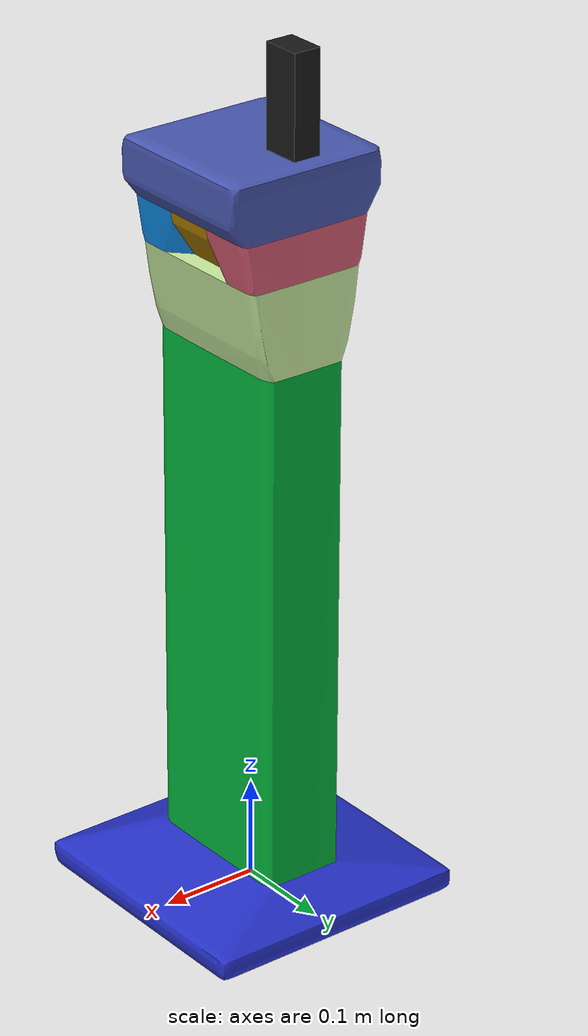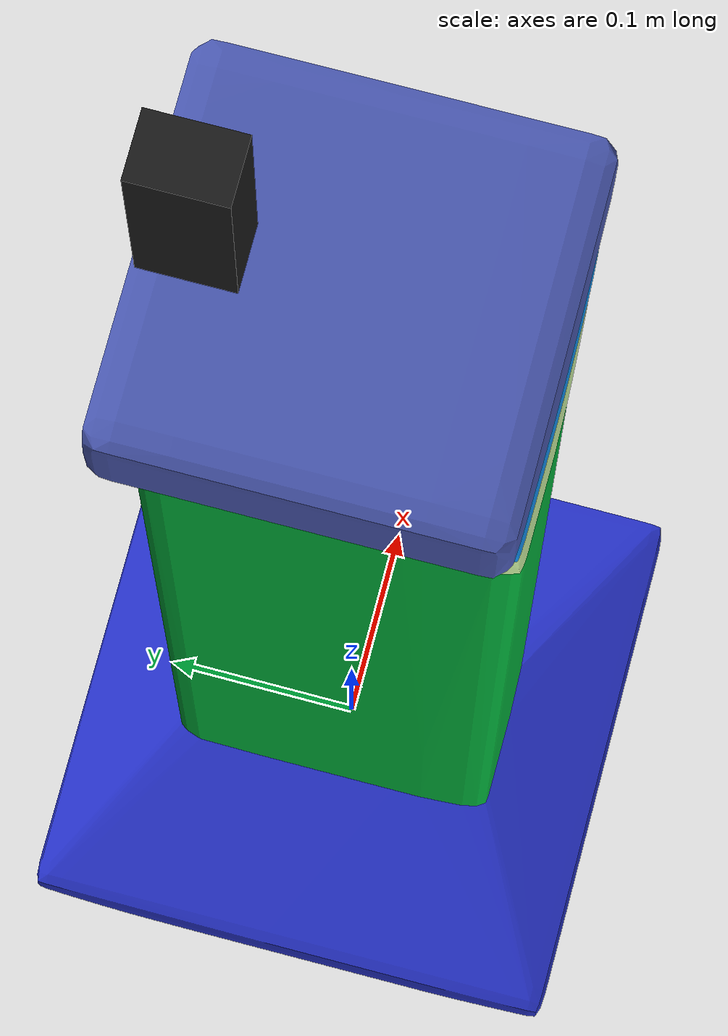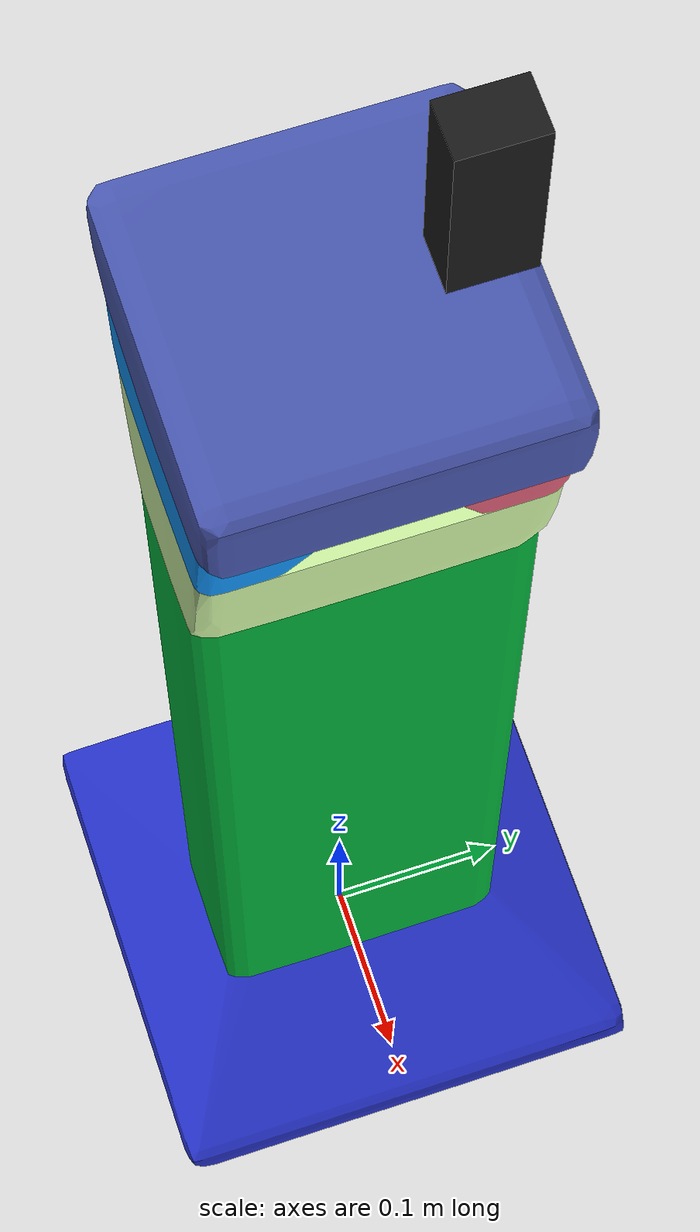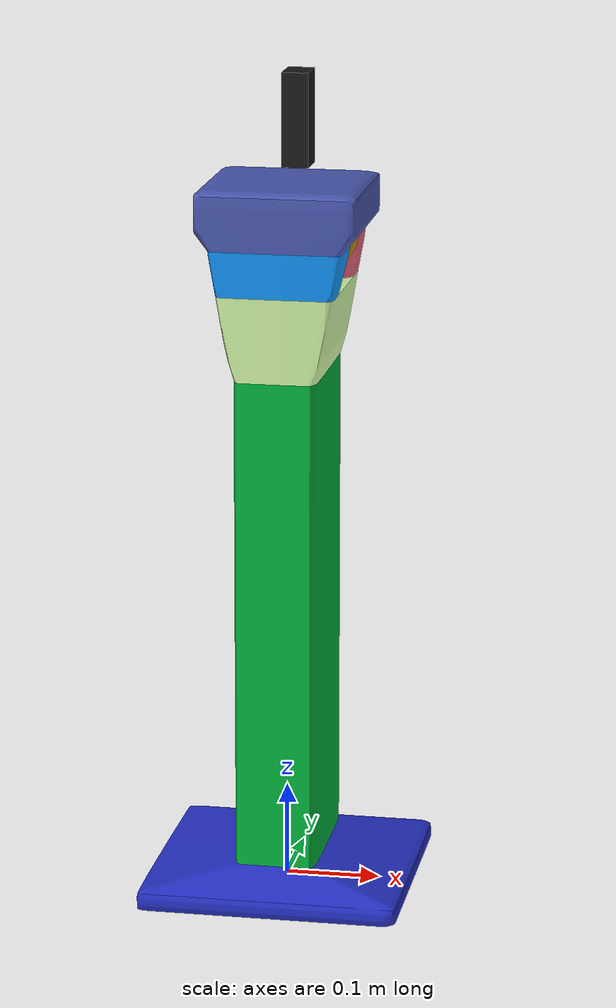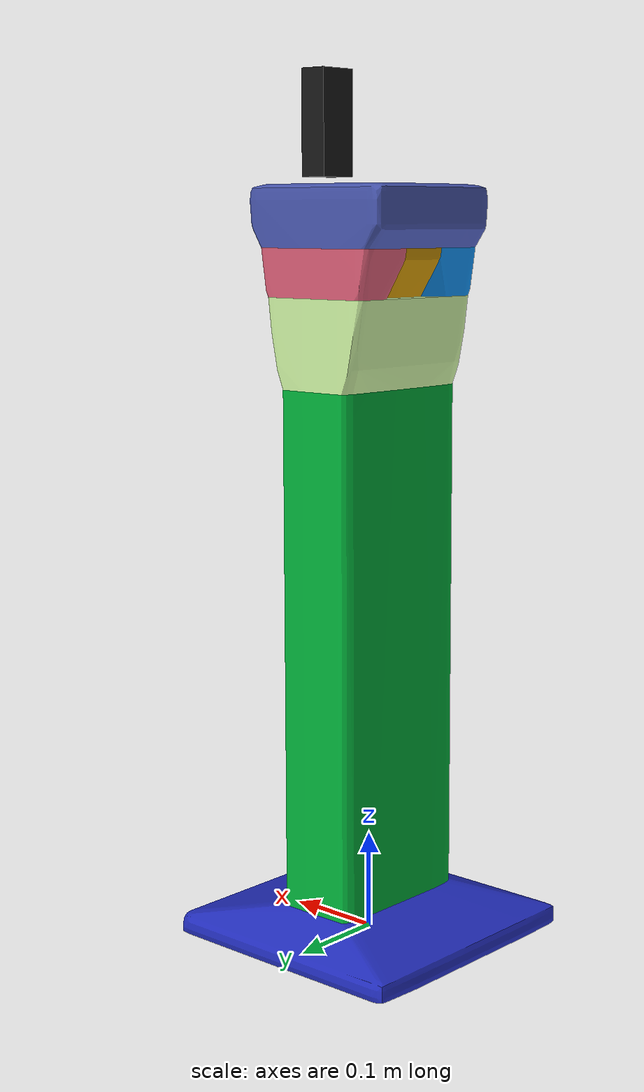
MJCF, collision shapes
<mujoco model="robot_torso">
  <compiler meshdir="assets"/>

  <default>
    <default class="visual">
      <geom type="mesh" contype="0" conaffinity="0" group="2" mass="0"/>
    </default>
    <default class="collision">
      <geom type="mesh" group="3"/>
    </default>
  </default>

  <asset>
    <mesh file="robot_torso.obj"/>
    <mesh file="robot_torso_collision_0.obj"/>
    <mesh file="robot_torso_collision_1.obj"/>
    <mesh file="robot_torso_collision_2.obj"/>
    <mesh file="robot_torso_collision_3.obj"/>
    <mesh file="robot_torso_collision_4.obj"/>
    <mesh file="robot_torso_collision_5.obj"/>
    <mesh file="robot_torso_collision_6.obj"/>

    <mesh file="head_bracket.STL" scale="0.001 0.001 0.001"/>

    <mesh file="d435i_0.obj"/>
    <mesh file="d435i_1.obj"/>
    <mesh file="d435i_2.obj"/>
    <mesh file="d435i_3.obj"/>
    <mesh file="d435i_4.obj"/>
    <mesh file="d435i_5.obj"/>
    <mesh file="d435i_6.obj"/>
    <mesh file="d435i_7.obj"/>
    <mesh file="d435i_8.obj"/>
  </asset>

  <worldbody>
    <body>
      <geom mesh="robot_torso" rgba="0.65 0.65 0.65 1" class="visual"/>
      <geom mesh="robot_torso_collision_0" rgba="0.14632037325219083 0.19155042587389148 0.7816952554521728 1" class="collision"/>
      <geom mesh="robot_torso_collision_1" rgba="0.009250161980918215 0.7074264263638433 0.23189011997796793 1" class="collision"/>
      <geom mesh="robot_torso_collision_2" rgba="0.2843421837375556 0.3421040643333966 0.6897320426195785 1" class="collision"/>
      <geom mesh="robot_torso_collision_3" rgba="0.057216821984843125 0.5669375867681313 0.951467757085922 1" class="collision"/>
      <geom mesh="robot_torso_collision_4" rgba="0.8043080324357968 0.9499769060565888 0.6359231348840233 1" class="collision"/>
      <geom mesh="robot_torso_collision_5" rgba="0.7415806952331973 0.532902948075013 0.0037624987055410175 1" class="collision"/>
      <geom mesh="robot_torso_collision_6" rgba="0.8495849374119239 0.3626924995834552 0.4606371055422074 1" class="collision"/>
    </body>
    <body pos="0 0.08 0.755" quat="0.7071068 0.7071068 0 0">
      <geom mesh="head_bracket" rgba="0.65 0.65 0.65 1" class="visual"/>
      <geom type="box" size="0.014 0.05 0.02" rgba="0.1 0.1 0.1 1" pos="0 0.06 0.02" class="visual"/>
      <!-- minimal mass so MuJoCo can compute center of mass (invisible, no collision) -->
      <geom type="sphere" size="0.001" mass="0.01" contype="0" conaffinity="0" rgba="0 0 0 0"/>
    </body>
    <body pos="0 0.09 0.86" quat="0 0 0.9659258 0.258819">
      <geom mesh="d435i_0" rgba="0.035601 0.035601 0.035601 1" class="visual"/>
      <geom mesh="d435i_1" rgba="0.287440 0.665387 0.327778 1" class="visual"/>
      <geom mesh="d435i_2" rgba="0.799102 0.806952 0.799103 1" class="visual"/>
      <geom mesh="d435i_3" rgba="0.035601 0.035601 0.035601 1" class="visual"/>
      <geom mesh="d435i_4" rgba="0.296138 0.296138 0.296138 1" class="visual"/>
      <geom mesh="d435i_5" rgba="0.070360 0.070360 0.070360 1" class="visual"/>
      <geom mesh="d435i_6" rgba="0.070360 0.070360 0.070360 1" class="visual"/>
      <geom mesh="d435i_7" rgba="0.087140 0.002866 0.009346 1" class="visual"/>
      <geom mesh="d435i_8" rgba="1 1 1 1" class="visual"/>
      <!-- minimal mass so MuJoCo can compute center of mass (invisible, no collision) -->
      <geom type="sphere" size="0.001" mass="0.01" contype="0" conaffinity="0" rgba="0 0 0 0"/>
    </body>
  </worldbody>
</mujoco>
